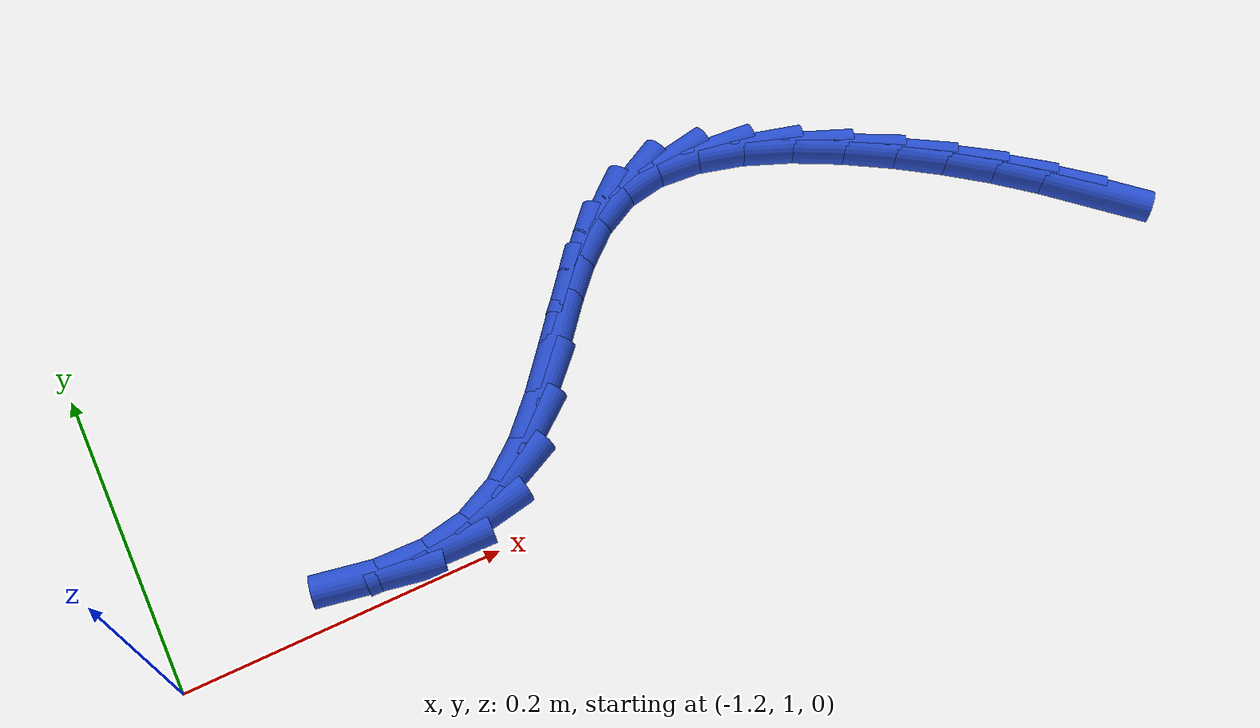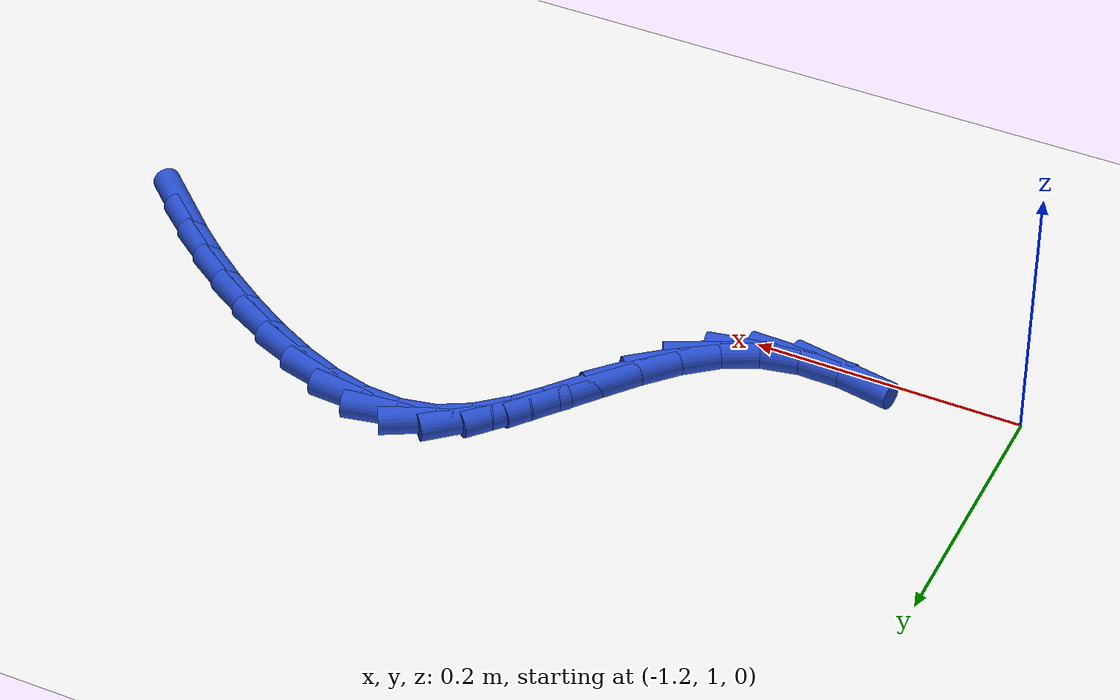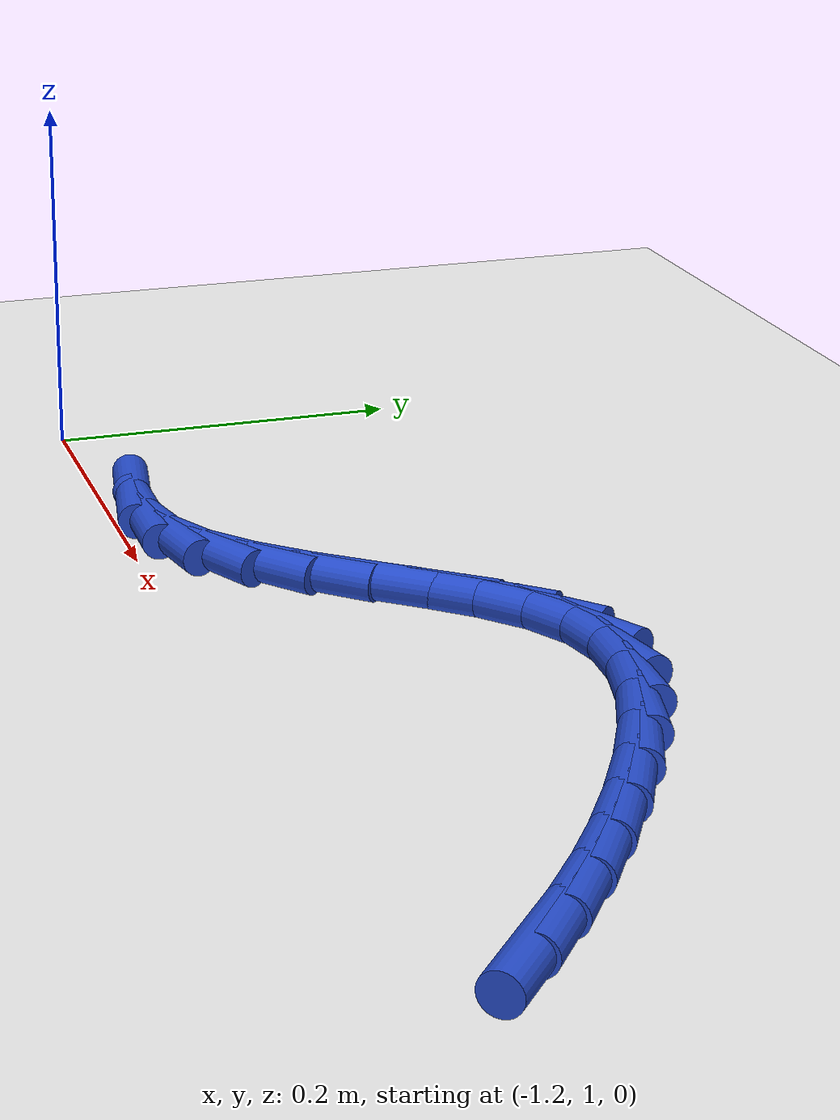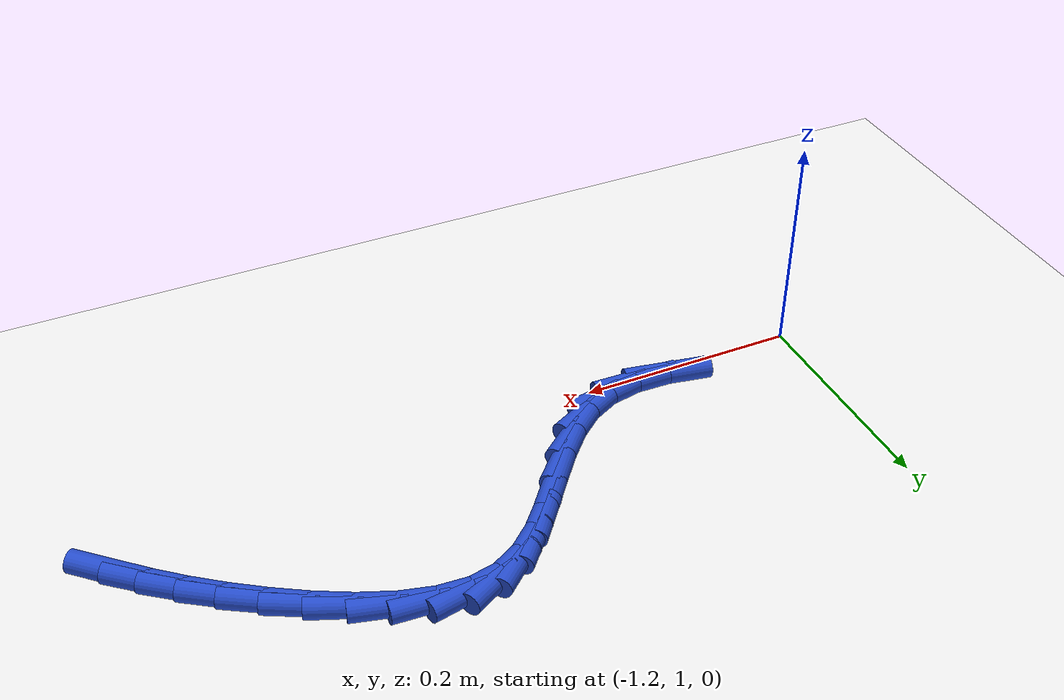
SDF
<sdf version="1.6">
 <world name="default">
  <model name="ground_plane">
   <static>1</static>
   <link name="link">
    <collision name="collision">
     <geometry><plane><normal>0 0 1</normal><size>100 100</size></plane></geometry>
     <surface><friction><ode><mu>100</mu><mu2>50</mu2></ode></friction></surface>
    </collision>
    <visual name="visual">
     <cast_shadows>0</cast_shadows>
     <geometry><plane><normal>0 0 1</normal><size>100 100</size></plane></geometry>
     <material>
      <script><uri>file://media/materials/scripts/gazebo.material</uri><name>Gazebo/WhiteGlow</name></script>
     </material>
    </visual>
   </link>
  </model>
  <model name="line">
   <link name="link_41">
    <pose>-0.5611632026864619 1.0543251310851305 0.01 0 1.57 -0.7387092423080179</pose>
    <collision name="collision">
     <geometry><cylinder><radius>0.01</radius><length>0.08</length></cylinder></geometry>
    </collision>
    <visual name="visual">
     <material>
      <script><name>Gazebo/Blue</name><uri>file://media/materials/scripts/gazebo.material</uri></script>
     </material>
     <geometry><cylinder><radius>0.01</radius><length>0.08</length></cylinder></geometry>
    </visual>
   </link>
   <link name="link_42">
    <pose>-0.5839113619914722 1.075042457884443 0.01 0 1.57 -0.6881906602183026</pose>
    <collision name="collision">
     <geometry><cylinder><radius>0.01</radius><length>0.08</length></cylinder></geometry>
    </collision>
    <visual name="visual">
     <material>
      <script><name>Gazebo/Blue</name><uri>file://media/materials/scripts/gazebo.material</uri></script>
     </material>
     <geometry><cylinder><radius>0.01</radius><length>0.08</length></cylinder></geometry>
    </visual>
   </link>
   <link name="link_43">
    <pose>-0.6080666509274257 1.094905323287188 0.01 0 1.57 -0.6371936695155282</pose>
    <collision name="collision">
     <geometry><cylinder><radius>0.01</radius><length>0.08</length></cylinder></geometry>
    </collision>
    <visual name="visual">
     <material>
      <script><name>Gazebo/Blue</name><uri>file://media/materials/scripts/gazebo.material</uri></script>
     </material>
     <geometry><cylinder><radius>0.01</radius><length>0.08</length></cylinder></geometry>
    </visual>
   </link>
   <link name="link_44">
    <pose>-0.6336944123065187 1.1138747590160936 0.01 0 1.57 -0.586131053227736</pose>
    <collision name="collision">
     <geometry><cylinder><radius>0.01</radius><length>0.08</length></cylinder></geometry>
    </collision>
    <visual name="visual">
     <material>
      <script><name>Gazebo/Blue</name><uri>file://media/materials/scripts/gazebo.material</uri></script>
     </material>
     <geometry><cylinder><radius>0.01</radius><length>0.08</length></cylinder></geometry>
    </visual>
   </link>
   <link name="link_45">
    <pose>-0.6608599889409479 1.1319117967938894 0.01 0 1.57 -0.5342552924577152</pose>
    <collision name="collision">
     <geometry><cylinder><radius>0.01</radius><length>0.08</length></cylinder></geometry>
    </collision>
    <visual name="visual">
     <material>
      <script><name>Gazebo/Blue</name><uri>file://media/materials/scripts/gazebo.material</uri></script>
     </material>
     <geometry><cylinder><radius>0.01</radius><length>0.08</length></cylinder></geometry>
    </visual>
   </link>
   <link name="link_46">
    <pose>-0.6895772070718386 1.1489022660639547 0.01 0 1.57 -0.46902416908908207</pose>
    <collision name="collision">
     <geometry><cylinder><radius>0.01</radius><length>0.08</length></cylinder></geometry>
    </collision>
    <visual name="visual">
     <material>
      <script><name>Gazebo/Blue</name><uri>file://media/materials/scripts/gazebo.material</uri></script>
     </material>
     <geometry><cylinder><radius>0.01</radius><length>0.08</length></cylinder></geometry>
    </visual>
   </link>
   <link name="link_47">
    <pose>-0.7193517075398492 1.1639901631147707 0.01 0 1.57 -0.3772798454977268</pose>
    <collision name="collision">
     <geometry><cylinder><radius>0.01</radius><length>0.08</length></cylinder></geometry>
    </collision>
    <visual name="visual">
     <material>
      <script><name>Gazebo/Blue</name><uri>file://media/materials/scripts/gazebo.material</uri></script>
     </material>
     <geometry><cylinder><radius>0.01</radius><length>0.08</length></cylinder></geometry>
    </visual>
   </link>
   <link name="link_48">
    <pose>-0.7493997565128359 1.1758970641371986 0.01 0 1.57 -0.24685653449712952</pose>
    <collision name="collision">
     <geometry><cylinder><radius>0.01</radius><length>0.08</length></cylinder></geometry>
    </collision>
    <visual name="visual">
     <material>
      <script><name>Gazebo/Blue</name><uri>file://media/materials/scripts/gazebo.material</uri></script>
     </material>
     <geometry><cylinder><radius>0.01</radius><length>0.08</length></cylinder></geometry>
    </visual>
   </link>
   <link name="link_49">
    <pose>-0.7789342648536896 1.1833396473528466 0.01 0 1.57 -0.05996030256032076</pose>
    <collision name="collision">
     <geometry><cylinder><radius>0.01</radius><length>0.08</length></cylinder></geometry>
    </collision>
    <visual name="visual">
     <material>
      <script><name>Gazebo/Blue</name><uri>file://media/materials/scripts/gazebo.material</uri></script>
     </material>
     <geometry><cylinder><radius>0.01</radius><length>0.08</length></cylinder></geometry>
    </visual>
   </link>
   <link name="link_50">
    <pose>-0.8071681434253017 1.1850345909833218 0.01 0 1.57 0.20130925087797083</pose>
    <collision name="collision">
     <geometry><cylinder><radius>0.01</radius><length>0.08</length></cylinder></geometry>
    </collision>
    <visual name="visual">
     <material>
      <script><name>Gazebo/Blue</name><uri>file://media/materials/scripts/gazebo.material</uri></script>
     </material>
     <geometry><cylinder><radius>0.01</radius><length>0.08</length></cylinder></geometry>
    </visual>
   </link>
   <link name="link_51">
    <pose>-0.8333144244419122 1.1796988292662336 0.01 0 1.57 0.5023566198429702</pose>
    <collision name="collision">
     <geometry><cylinder><radius>0.01</radius><length>0.08</length></cylinder></geometry>
    </collision>
    <visual name="visual">
     <material>
      <script><name>Gazebo/Blue</name><uri>file://media/materials/scripts/gazebo.material</uri></script>
     </material>
     <geometry><cylinder><radius>0.01</radius><length>0.08</length></cylinder></geometry>
    </visual>
   </link>
   <link name="link_52">
    <pose>-0.8569113789614968 1.166735455673453 0.01 0 1.57 0.7212849251761181</pose>
    <collision name="collision">
     <geometry><cylinder><radius>0.01</radius><length>0.08</length></cylinder></geometry>
    </collision>
    <visual name="visual">
     <material>
      <script><name>Gazebo/Blue</name><uri>file://media/materials/scripts/gazebo.material</uri></script>
     </material>
     <geometry><cylinder><radius>0.01</radius><length>0.08</length></cylinder></geometry>
    </visual>
   </link>
   <link name="link_53">
    <pose>-0.8785296482813488 1.1477255642033257 0.01 0 1.57 0.8458318410964321</pose>
    <collision name="collision">
     <geometry><cylinder><radius>0.01</radius><length>0.08</length></cylinder></geometry>
    </collision>
    <visual name="visual">
     <material>
      <script><name>Gazebo/Blue</name><uri>file://media/materials/scripts/gazebo.material</uri></script>
     </material>
     <geometry><cylinder><radius>0.01</radius><length>0.08</length></cylinder></geometry>
    </visual>
   </link>
   <link name="link_54">
    <pose>-0.8989442386502885 1.1246813993804947 0.01 0 1.57 0.8976882505367142</pose>
    <collision name="collision">
     <geometry><cylinder><radius>0.01</radius><length>0.08</length></cylinder></geometry>
    </collision>
    <visual name="visual">
     <material>
      <script><name>Gazebo/Blue</name><uri>file://media/materials/scripts/gazebo.material</uri></script>
     </material>
     <geometry><cylinder><radius>0.01</radius><length>0.08</length></cylinder></geometry>
    </visual>
   </link>
   <link name="link_55">
    <pose>-0.9189301563171345 1.0996152057296007 0.01 0 1.57 0.8894890259017091</pose>
    <collision name="collision">
     <geometry><cylinder><radius>0.01</radius><length>0.08</length></cylinder></geometry>
    </collision>
    <visual name="visual">
     <material>
      <script><name>Gazebo/Blue</name><uri>file://media/materials/scripts/gazebo.material</uri></script>
     </material>
     <geometry><cylinder><radius>0.01</radius><length>0.08</length></cylinder></geometry>
    </visual>
   </link>
   <link name="link_56">
    <pose>-0.9392624075307069 1.074539227775287 0.01 0 1.57 0.8217628106823327</pose>
    <collision name="collision">
     <geometry><cylinder><radius>0.01</radius><length>0.08</length></cylinder></geometry>
    </collision>
    <visual name="visual">
     <material>
      <script><name>Gazebo/Blue</name><uri>file://media/materials/scripts/gazebo.material</uri></script>
     </material>
     <geometry><cylinder><radius>0.01</radius><length>0.08</length></cylinder></geometry>
    </visual>
   </link>
   <link name="link_57">
    <pose>-0.9607159985398246 1.0514657100421954 0.01 0 1.57 0.6845565056192284</pose>
    <collision name="collision">
     <geometry><cylinder><radius>0.01</radius><length>0.08</length></cylinder></geometry>
    </collision>
    <visual name="visual">
     <material>
      <script><name>Gazebo/Blue</name><uri>file://media/materials/scripts/gazebo.material</uri></script>
     </material>
     <geometry><cylinder><radius>0.01</radius><length>0.08</length></cylinder></geometry>
    </visual>
   </link>
   <link name="link_58">
    <pose>-0.9840659355933067 1.0324068970549678 0.01 0 1.57 0.464382555857606</pose>
    <collision name="collision">
     <geometry><cylinder><radius>0.01</radius><length>0.08</length></cylinder></geometry>
    </collision>
    <visual name="visual">
     <material>
      <script><name>Gazebo/Blue</name><uri>file://media/materials/scripts/gazebo.material</uri></script>
     </material>
     <geometry><cylinder><radius>0.01</radius><length>0.08</length></cylinder></geometry>
    </visual>
   </link>
   <link name="link_59">
    <pose>-1.0100862551189302 1.0193728240603128 0.01 0 1.57 0.1966385221647778</pose>
    <collision name="collision">
     <geometry><cylinder><radius>0.01</radius><length>0.08</length></cylinder></geometry>
    </collision>
    <visual name="visual">
     <material>
      <script><name>Gazebo/Blue</name><uri>file://media/materials/scripts/gazebo.material</uri></script>
     </material>
     <geometry><cylinder><radius>0.01</radius><length>0.08</length></cylinder></geometry>
    </visual>
   </link>
   <link name="link_60">
    <pose>-1.03919961234353 1.0135730706547084 0.01 0 1.57 -0.020727958827722853</pose>
    <collision name="collision">
     <geometry><cylinder><radius>0.01</radius><length>0.08</length></cylinder></geometry>
    </collision>
    <visual name="visual">
     <material>
      <script><name>Gazebo/Blue</name><uri>file://media/materials/scripts/gazebo.material</uri></script>
     </material>
     <geometry><cylinder><radius>0.01</radius><length>0.08</length></cylinder></geometry>
    </visual>
   </link>
   <link name="link_61">
    <pose>-1.0709569488337016 1.0142314297082666 0.01 0 1.57 -0.1766634335091765</pose>
    <collision name="collision">
     <geometry><cylinder><radius>0.01</radius><length>0.08</length></cylinder></geometry>
    </collision>
    <visual name="visual">
     <material>
      <script><name>Gazebo/Blue</name><uri>file://media/materials/scripts/gazebo.material</uri></script>
     </material>
     <geometry><cylinder><radius>0.01</radius><length>0.08</length></cylinder></geometry>
    </visual>
   </link>
  </model>
 </world>
</sdf>
